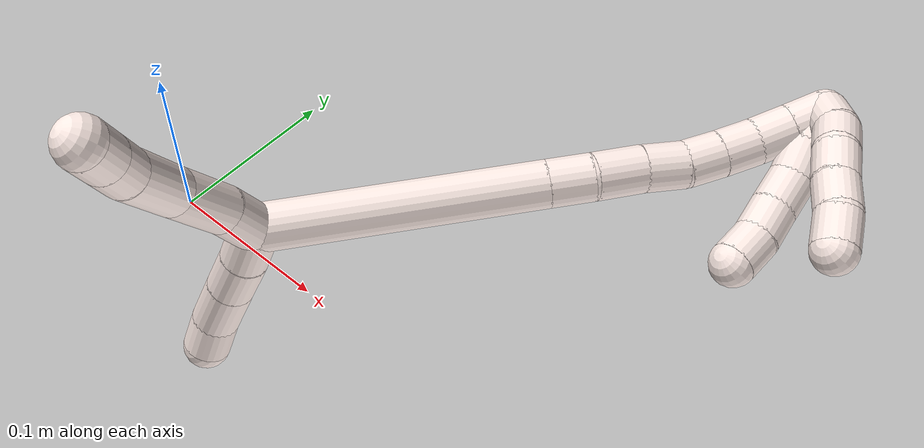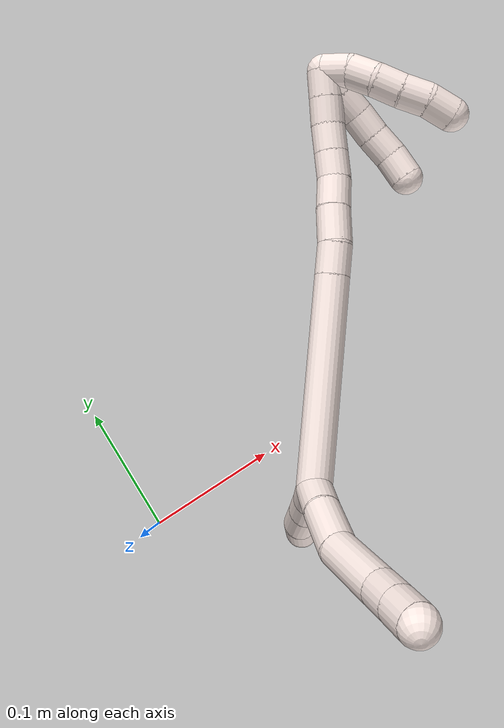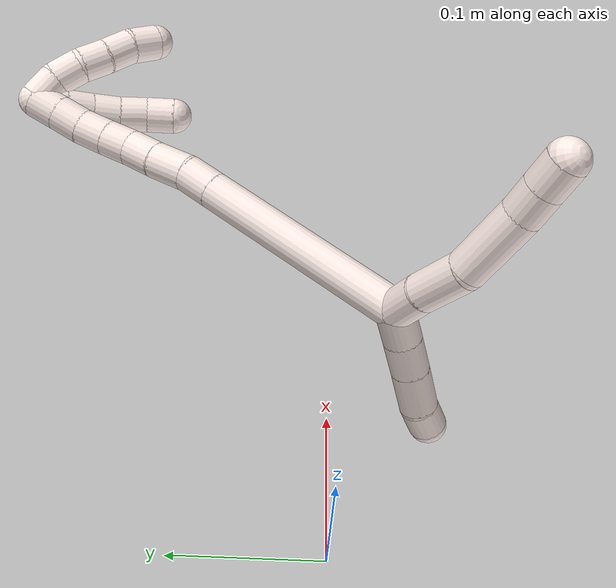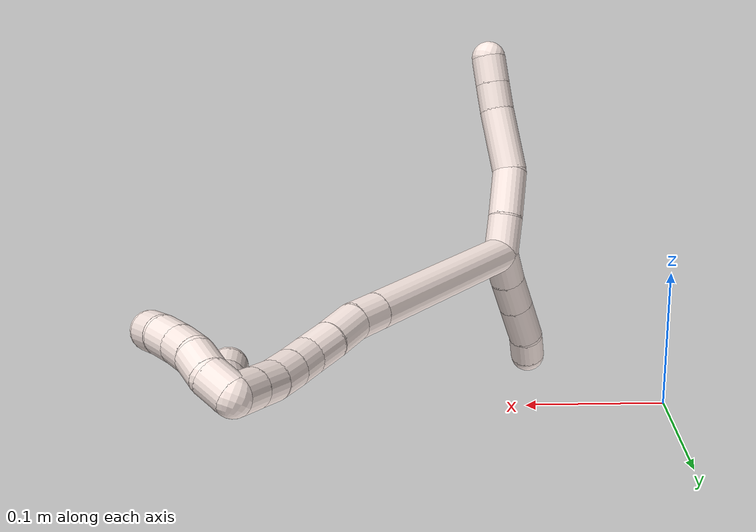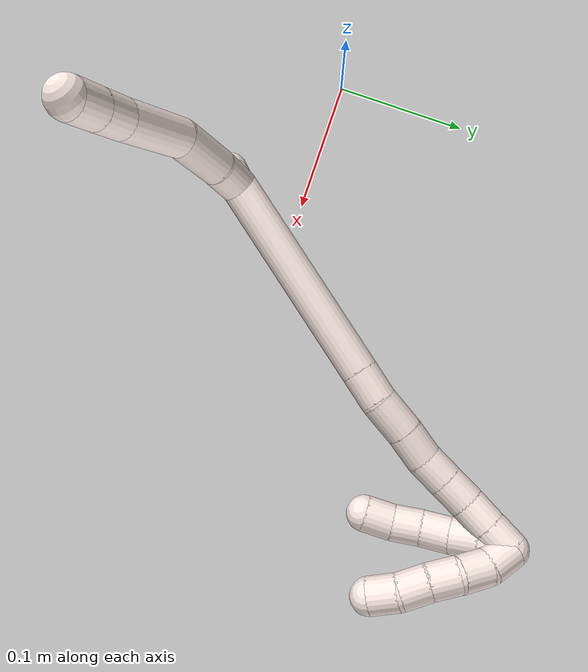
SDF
<sdf version="1.7">
 <world name="default">
  <model name="11">
   <static>0</static>
   <link name="11">
    <collision name="collision-cylinder-e_1_2_8">
     <pose>0.000378 0.002882 0.013105 -0.216454 0.028144 -0.003058</pose>
     <geometry><cylinder><radius>0.0125</radius><length>0.026846</length></cylinder></geometry>
     <surface>
      <friction><ode><mu>1.16</mu><mu2>1.16</mu2><slip1>0</slip1><slip2>0</slip2></ode></friction>
      <contact><ode><kp>1e+06</kp><kd>1</kd><max_vel>0</max_vel><min_depth>0.001</min_depth></ode></contact>
     </surface>
    </collision>
    <visual name="visual-cylinder-e_1_2_8">
     <pose>0.000378 0.002882 0.013105 -0.216454 0.028144 -0.003058</pose>
     <geometry><cylinder><radius>0.0125</radius><length>0.026846</length></cylinder></geometry>
     <material><ambient>1 0.933333 0.909804 1</ambient></material>
    </visual>
    <collision name="collision-cylinder-e_2_8_9">
     <pose>0.003292 0.009186 0.043457 -0.195879 0.143238 -0.014098</pose>
     <geometry><cylinder><radius>0.0125</radius><length>0.035533</length></cylinder></geometry>
     <surface>
      <friction><ode><mu>1.16</mu><mu2>1.16</mu2><slip1>0</slip1><slip2>0</slip2></ode></friction>
      <contact><ode><kp>1e+06</kp><kd>1</kd><max_vel>0</max_vel><min_depth>0.001</min_depth></ode></contact>
     </surface>
    </collision>
    <visual name="visual-cylinder-e_2_8_9">
     <pose>0.003292 0.009186 0.043457 -0.195879 0.143238 -0.014098</pose>
     <geometry><cylinder><radius>0.0125</radius><length>0.035533</length></cylinder></geometry>
     <material><ambient>1 0.933333 0.909804 1</ambient></material>
    </visual>
    <collision name="collision-cylinder-e_3_9_10">
     <pose>0.009443 0.023911 0.081089 -0.506298 0.153869 -0.039879</pose>
     <geometry><cylinder><radius>0.0125</radius><length>0.047173</length></cylinder></geometry>
     <surface>
      <friction><ode><mu>1.16</mu><mu2>1.16</mu2><slip1>0</slip1><slip2>0</slip2></ode></friction>
      <contact><ode><kp>1e+06</kp><kd>1</kd><max_vel>0</max_vel><min_depth>0.001</min_depth></ode></contact>
     </surface>
    </collision>
    <visual name="visual-cylinder-e_3_9_10">
     <pose>0.009443 0.023911 0.081089 -0.506298 0.153869 -0.039879</pose>
     <geometry><cylinder><radius>0.0125</radius><length>0.047173</length></cylinder></geometry>
     <material><ambient>1 0.933333 0.909804 1</ambient></material>
    </visual>
    <collision name="collision-cylinder-e_4_10_11">
     <pose>0.013455 0.040202 0.110277 -0.515454 0.03927 -0.010352</pose>
     <geometry><cylinder><radius>0.0125</radius><length>0.020252</length></cylinder></geometry>
     <surface>
      <friction><ode><mu>1.16</mu><mu2>1.16</mu2><slip1>0</slip1><slip2>0</slip2></ode></friction>
      <contact><ode><kp>1e+06</kp><kd>1</kd><max_vel>0</max_vel><min_depth>0.001</min_depth></ode></contact>
     </surface>
    </collision>
    <visual name="visual-cylinder-e_4_10_11">
     <pose>0.013455 0.040202 0.110277 -0.515454 0.03927 -0.010352</pose>
     <geometry><cylinder><radius>0.0125</radius><length>0.020252</length></cylinder></geometry>
     <material><ambient>1 0.933333 0.909804 1</ambient></material>
    </visual>
    <collision name="collision-cylinder-e_5_11_6">
     <pose>0.01425 0.050097 0.127897 -0.507908 0.039333 -0.01021</pose>
     <geometry><cylinder><radius>0.0125</radius><length>0.020196</length></cylinder></geometry>
     <surface>
      <friction><ode><mu>1.16</mu><mu2>1.16</mu2><slip1>0</slip1><slip2>0</slip2></ode></friction>
      <contact><ode><kp>1e+06</kp><kd>1</kd><max_vel>0</max_vel><min_depth>0.001</min_depth></ode></contact>
     </surface>
    </collision>
    <visual name="visual-cylinder-e_5_11_6">
     <pose>0.01425 0.050097 0.127897 -0.507908 0.039333 -0.01021</pose>
     <geometry><cylinder><radius>0.0125</radius><length>0.020196</length></cylinder></geometry>
     <material><ambient>1 0.933333 0.909804 1</ambient></material>
    </visual>
    <collision name="collision-cylinder-e_1_2_12">
     <pose>0.00649 -0.007965 -0.006062 2.22135 0.575291 1.07636</pose>
     <geometry><cylinder><radius>0.0125</radius><length>0.023858</length></cylinder></geometry>
     <surface>
      <friction><ode><mu>1.16</mu><mu2>1.16</mu2><slip1>0</slip1><slip2>0</slip2></ode></friction>
      <contact><ode><kp>1e+06</kp><kd>1</kd><max_vel>0</max_vel><min_depth>0.001</min_depth></ode></contact>
     </surface>
    </collision>
    <visual name="visual-cylinder-e_1_2_12">
     <pose>0.00649 -0.007965 -0.006062 2.22135 0.575291 1.07636</pose>
     <geometry><cylinder><radius>0.0125</radius><length>0.023858</length></cylinder></geometry>
     <material><ambient>1 0.933333 0.909804 1</ambient></material>
    </visual>
    <collision name="collision-cylinder-e_2_12_13">
     <pose>0.019436 -0.024817 -0.018104 2.16312 0.542338 0.962484</pose>
     <geometry><cylinder><radius>0.0125</radius><length>0.025015</length></cylinder></geometry>
     <surface>
      <friction><ode><mu>1.16</mu><mu2>1.16</mu2><slip1>0</slip1><slip2>0</slip2></ode></friction>
      <contact><ode><kp>1e+06</kp><kd>1</kd><max_vel>0</max_vel><min_depth>0.001</min_depth></ode></contact>
     </surface>
    </collision>
    <visual name="visual-cylinder-e_2_12_13">
     <pose>0.019436 -0.024817 -0.018104 2.16312 0.542338 0.962484</pose>
     <geometry><cylinder><radius>0.0125</radius><length>0.025015</length></cylinder></geometry>
     <material><ambient>1 0.933333 0.909804 1</ambient></material>
    </visual>
    <collision name="collision-cylinder-e_3_13_14">
     <pose>0.03365 -0.044635 -0.031607 2.17356 0.529103 0.951605</pose>
     <geometry><cylinder><radius>0.0125</radius><length>0.03074</length></cylinder></geometry>
     <surface>
      <friction><ode><mu>1.16</mu><mu2>1.16</mu2><slip1>0</slip1><slip2>0</slip2></ode></friction>
      <contact><ode><kp>1e+06</kp><kd>1</kd><max_vel>0</max_vel><min_depth>0.001</min_depth></ode></contact>
     </surface>
    </collision>
    <visual name="visual-cylinder-e_3_13_14">
     <pose>0.03365 -0.044635 -0.031607 2.17356 0.529103 0.951605</pose>
     <geometry><cylinder><radius>0.0125</radius><length>0.03074</length></cylinder></geometry>
     <material><ambient>1 0.933333 0.909804 1</ambient></material>
    </visual>
    <collision name="collision-cylinder-e_4_14_5">
     <pose>0.048095 -0.061467 -0.044063 2.26705 0.715529 1.3492</pose>
     <geometry><cylinder><radius>0.0125</radius><length>0.020387</length></cylinder></geometry>
     <surface>
      <friction><ode><mu>1.16</mu><mu2>1.16</mu2><slip1>0</slip1><slip2>0</slip2></ode></friction>
      <contact><ode><kp>1e+06</kp><kd>1</kd><max_vel>0</max_vel><min_depth>0.001</min_depth></ode></contact>
     </surface>
    </collision>
    <visual name="visual-cylinder-e_4_14_5">
     <pose>0.048095 -0.061467 -0.044063 2.26705 0.715529 1.3492</pose>
     <geometry><cylinder><radius>0.0125</radius><length>0.020387</length></cylinder></geometry>
     <material><ambient>1 0.933333 0.909804 1</ambient></material>
    </visual>
    <collision name="collision-cylinder-e_1_2_15">
     <pose>-0.035361 0.046714 -0.043939 -2.32559 -0.5039 1.07425</pose>
     <geometry><cylinder><radius>0.0125</radius><length>0.146469</length></cylinder></geometry>
     <surface>
      <friction><ode><mu>1.16</mu><mu2>1.16</mu2><slip1>0</slip1><slip2>0</slip2></ode></friction>
      <contact><ode><kp>1e+06</kp><kd>1</kd><max_vel>0</max_vel><min_depth>0.001</min_depth></ode></contact>
     </surface>
    </collision>
    <visual name="visual-cylinder-e_1_2_15">
     <pose>-0.035361 0.046714 -0.043939 -2.32559 -0.5039 1.07425</pose>
     <geometry><cylinder><radius>0.0125</radius><length>0.146469</length></cylinder></geometry>
     <material><ambient>1 0.933333 0.909804 1</ambient></material>
    </visual>
    <collision name="collision-cylinder-e_2_15_16">
     <pose>-0.076315 0.100864 -0.09483 -2.32258 -0.502468 1.06802</pose>
     <geometry><cylinder><radius>0.0125</radius><length>0.023228</length></cylinder></geometry>
     <surface>
      <friction><ode><mu>1.16</mu><mu2>1.16</mu2><slip1>0</slip1><slip2>0</slip2></ode></friction>
      <contact><ode><kp>1e+06</kp><kd>1</kd><max_vel>0</max_vel><min_depth>0.001</min_depth></ode></contact>
     </surface>
    </collision>
    <visual name="visual-cylinder-e_2_15_16">
     <pose>-0.076315 0.100864 -0.09483 -2.32258 -0.502468 1.06802</pose>
     <geometry><cylinder><radius>0.0125</radius><length>0.023228</length></cylinder></geometry>
     <material><ambient>1 0.933333 0.909804 1</ambient></material>
    </visual>
    <collision name="collision-cylinder-e_3_16_17">
     <pose>-0.088869 0.115032 -0.111014 -2.5115 -0.547165 1.42175</pose>
     <geometry><cylinder><radius>0.0125</radius><length>0.026759</length></cylinder></geometry>
     <surface>
      <friction><ode><mu>1.16</mu><mu2>1.16</mu2><slip1>0</slip1><slip2>0</slip2></ode></friction>
      <contact><ode><kp>1e+06</kp><kd>1</kd><max_vel>0</max_vel><min_depth>0.001</min_depth></ode></contact>
     </surface>
    </collision>
    <visual name="visual-cylinder-e_3_16_17">
     <pose>-0.088869 0.115032 -0.111014 -2.5115 -0.547165 1.42175</pose>
     <geometry><cylinder><radius>0.0125</radius><length>0.026759</length></cylinder></geometry>
     <material><ambient>1 0.933333 0.909804 1</ambient></material>
    </visual>
    <collision name="collision-cylinder-e_4_17_18">
     <pose>-0.101052 0.127949 -0.128179 -2.4794 -0.47878 1.23485</pose>
     <geometry><cylinder><radius>0.0125</radius><length>0.022667</length></cylinder></geometry>
     <surface>
      <friction><ode><mu>1.16</mu><mu2>1.16</mu2><slip1>0</slip1><slip2>0</slip2></ode></friction>
      <contact><ode><kp>1e+06</kp><kd>1</kd><max_vel>0</max_vel><min_depth>0.001</min_depth></ode></contact>
     </surface>
    </collision>
    <visual name="visual-cylinder-e_4_17_18">
     <pose>-0.101052 0.127949 -0.128179 -2.4794 -0.47878 1.23485</pose>
     <geometry><cylinder><radius>0.0125</radius><length>0.022667</length></cylinder></geometry>
     <material><ambient>1 0.933333 0.909804 1</ambient></material>
    </visual>
    <collision name="collision-cylinder-e_5_18_19">
     <pose>-0.112465 0.139151 -0.142235 -2.45511 -0.663829 1.53456</pose>
     <geometry><cylinder><radius>0.0125</radius><length>0.0201</length></cylinder></geometry>
     <surface>
      <friction><ode><mu>1.16</mu><mu2>1.16</mu2><slip1>0</slip1><slip2>0</slip2></ode></friction>
      <contact><ode><kp>1e+06</kp><kd>1</kd><max_vel>0</max_vel><min_depth>0.001</min_depth></ode></contact>
     </surface>
    </collision>
    <visual name="visual-cylinder-e_5_18_19">
     <pose>-0.112465 0.139151 -0.142235 -2.45511 -0.663829 1.53456</pose>
     <geometry><cylinder><radius>0.0125</radius><length>0.0201</length></cylinder></geometry>
     <material><ambient>1 0.933333 0.909804 1</ambient></material>
    </visual>
    <collision name="collision-cylinder-e_6_19_20">
     <pose>-0.125252 0.149474 -0.15423 -2.40685 -0.694771 1.50983</pose>
     <geometry><cylinder><radius>0.0125</radius><length>0.020604</length></cylinder></geometry>
     <surface>
      <friction><ode><mu>1.16</mu><mu2>1.16</mu2><slip1>0</slip1><slip2>0</slip2></ode></friction>
      <contact><ode><kp>1e+06</kp><kd>1</kd><max_vel>0</max_vel><min_depth>0.001</min_depth></ode></contact>
     </surface>
    </collision>
    <visual name="visual-cylinder-e_6_19_20">
     <pose>-0.125252 0.149474 -0.15423 -2.40685 -0.694771 1.50983</pose>
     <geometry><cylinder><radius>0.0125</radius><length>0.020604</length></cylinder></geometry>
     <material><ambient>1 0.933333 0.909804 1</ambient></material>
    </visual>
    <collision name="collision-cylinder-e_7_20_21">
     <pose>-0.138474 0.160727 -0.164801 -2.23944 -0.718349 1.31879</pose>
     <geometry><cylinder><radius>0.0125</radius><length>0.020135</length></cylinder></geometry>
     <surface>
      <friction><ode><mu>1.16</mu><mu2>1.16</mu2><slip1>0</slip1><slip2>0</slip2></ode></friction>
      <contact><ode><kp>1e+06</kp><kd>1</kd><max_vel>0</max_vel><min_depth>0.001</min_depth></ode></contact>
     </surface>
    </collision>
    <visual name="visual-cylinder-e_7_20_21">
     <pose>-0.138474 0.160727 -0.164801 -2.23944 -0.718349 1.31879</pose>
     <geometry><cylinder><radius>0.0125</radius><length>0.020135</length></cylinder></geometry>
     <material><ambient>1 0.933333 0.909804 1</ambient></material>
    </visual>
    <collision name="collision-cylinder-e_8_21_1">
     <pose>-0.151785 0.172511 -0.174149 -2.24345 -0.730562 1.34165</pose>
     <geometry><cylinder><radius>0.0125</radius><length>0.020038</length></cylinder></geometry>
     <surface>
      <friction><ode><mu>1.16</mu><mu2>1.16</mu2><slip1>0</slip1><slip2>0</slip2></ode></friction>
      <contact><ode><kp>1e+06</kp><kd>1</kd><max_vel>0</max_vel><min_depth>0.001</min_depth></ode></contact>
     </surface>
    </collision>
    <visual name="visual-cylinder-e_8_21_1">
     <pose>-0.151785 0.172511 -0.174149 -2.24345 -0.730562 1.34165</pose>
     <geometry><cylinder><radius>0.0125</radius><length>0.020038</length></cylinder></geometry>
     <material><ambient>1 0.933333 0.909804 1</ambient></material>
    </visual>
    <collision name="collision-cylinder-e_1_1_22">
     <pose>-0.148709 0.176396 -0.17785 1.11856 1.35212 0.930679</pose>
     <geometry><cylinder><radius>0.0125</radius><length>0.02</length></cylinder></geometry>
     <surface>
      <friction><ode><mu>1.16</mu><mu2>1.16</mu2><slip1>0</slip1><slip2>0</slip2></ode></friction>
      <contact><ode><kp>1e+06</kp><kd>1</kd><max_vel>0</max_vel><min_depth>0.001</min_depth></ode></contact>
     </surface>
    </collision>
    <visual name="visual-cylinder-e_1_1_22">
     <pose>-0.148709 0.176396 -0.17785 1.11856 1.35212 0.930679</pose>
     <geometry><cylinder><radius>0.0125</radius><length>0.02</length></cylinder></geometry>
     <material><ambient>1 0.933333 0.909804 1</ambient></material>
    </visual>
    <collision name="collision-cylinder-e_2_22_23">
     <pose>-0.129002 0.173778 -0.176095 0.690976 1.46589 0.626684</pose>
     <geometry><cylinder><radius>0.0125</radius><length>0.02</length></cylinder></geometry>
     <surface>
      <friction><ode><mu>1.16</mu><mu2>1.16</mu2><slip1>0</slip1><slip2>0</slip2></ode></friction>
      <contact><ode><kp>1e+06</kp><kd>1</kd><max_vel>0</max_vel><min_depth>0.001</min_depth></ode></contact>
     </surface>
    </collision>
    <visual name="visual-cylinder-e_2_22_23">
     <pose>-0.129002 0.173778 -0.176095 0.690976 1.46589 0.626684</pose>
     <geometry><cylinder><radius>0.0125</radius><length>0.02</length></cylinder></geometry>
     <material><ambient>1 0.933333 0.909804 1</ambient></material>
    </visual>
    <collision name="collision-cylinder-e_3_23_24">
     <pose>-0.109414 0.171987 -0.172888 0.437789 1.30262 0.335953</pose>
     <geometry><cylinder><radius>0.0125</radius><length>0.02</length></cylinder></geometry>
     <surface>
      <friction><ode><mu>1.16</mu><mu2>1.16</mu2><slip1>0</slip1><slip2>0</slip2></ode></friction>
      <contact><ode><kp>1e+06</kp><kd>1</kd><max_vel>0</max_vel><min_depth>0.001</min_depth></ode></contact>
     </surface>
    </collision>
    <visual name="visual-cylinder-e_3_23_24">
     <pose>-0.109414 0.171987 -0.172888 0.437789 1.30262 0.335953</pose>
     <geometry><cylinder><radius>0.0125</radius><length>0.02</length></cylinder></geometry>
     <material><ambient>1 0.933333 0.909804 1</ambient></material>
    </visual>
    <collision name="collision-cylinder-e_4_24_25">
     <pose>-0.090275 0.170578 -0.167368 0.091136 1.25212 0.065922</pose>
     <geometry><cylinder><radius>0.0125</radius><length>0.02</length></cylinder></geometry>
     <surface>
      <friction><ode><mu>1.16</mu><mu2>1.16</mu2><slip1>0</slip1><slip2>0</slip2></ode></friction>
      <contact><ode><kp>1e+06</kp><kd>1</kd><max_vel>0</max_vel><min_depth>0.001</min_depth></ode></contact>
     </surface>
    </collision>
    <visual name="visual-cylinder-e_4_24_25">
     <pose>-0.090275 0.170578 -0.167368 0.091136 1.25212 0.065922</pose>
     <geometry><cylinder><radius>0.0125</radius><length>0.02</length></cylinder></geometry>
     <material><ambient>1 0.933333 0.909804 1</ambient></material>
    </visual>
    <collision name="collision-cylinder-e_5_25_4">
     <pose>-0.072003 0.169125 -0.159599 0.246153 1.07081 0.146497</pose>
     <geometry><cylinder><radius>0.0125</radius><length>0.02</length></cylinder></geometry>
     <surface>
      <friction><ode><mu>1.16</mu><mu2>1.16</mu2><slip1>0</slip1><slip2>0</slip2></ode></friction>
      <contact><ode><kp>1e+06</kp><kd>1</kd><max_vel>0</max_vel><min_depth>0.001</min_depth></ode></contact>
     </surface>
    </collision>
    <visual name="visual-cylinder-e_5_25_4">
     <pose>-0.072003 0.169125 -0.159599 0.246153 1.07081 0.146497</pose>
     <geometry><cylinder><radius>0.0125</radius><length>0.02</length></cylinder></geometry>
     <material><ambient>1 0.933333 0.909804 1</ambient></material>
    </visual>
    <collision name="collision-cylinder-e_1_1_26">
     <pose>-0.152215 0.185427 -0.175519 -1.1371 0.675775 -0.441663</pose>
     <geometry><cylinder><radius>0.0125</radius><length>0.02</length></cylinder></geometry>
     <surface>
      <friction><ode><mu>1.16</mu><mu2>1.16</mu2><slip1>0</slip1><slip2>0</slip2></ode></friction>
      <contact><ode><kp>1e+06</kp><kd>1</kd><max_vel>0</max_vel><min_depth>0.001</min_depth></ode></contact>
     </surface>
    </collision>
    <visual name="visual-cylinder-e_1_1_26">
     <pose>-0.152215 0.185427 -0.175519 -1.1371 0.675775 -0.441663</pose>
     <geometry><cylinder><radius>0.0125</radius><length>0.02</length></cylinder></geometry>
     <material><ambient>1 0.933333 0.909804 1</ambient></material>
    </visual>
    <collision name="collision-cylinder-e_2_26_27">
     <pose>-0.138206 0.196971 -0.167776 -0.785317 0.887489 -0.388786</pose>
     <geometry><cylinder><radius>0.0125</radius><length>0.02</length></cylinder></geometry>
     <surface>
      <friction><ode><mu>1.16</mu><mu2>1.16</mu2><slip1>0</slip1><slip2>0</slip2></ode></friction>
      <contact><ode><kp>1e+06</kp><kd>1</kd><max_vel>0</max_vel><min_depth>0.001</min_depth></ode></contact>
     </surface>
    </collision>
    <visual name="visual-cylinder-e_2_26_27">
     <pose>-0.138206 0.196971 -0.167776 -0.785317 0.887489 -0.388786</pose>
     <geometry><cylinder><radius>0.0125</radius><length>0.02</length></cylinder></geometry>
     <material><ambient>1 0.933333 0.909804 1</ambient></material>
    </visual>
    <collision name="collision-cylinder-e_3_27_28">
     <pose>-0.121478 0.205202 -0.161008 -1.02195 1.11352 -0.671513</pose>
     <geometry><cylinder><radius>0.0125</radius><length>0.02</length></cylinder></geometry>
     <surface>
      <friction><ode><mu>1.16</mu><mu2>1.16</mu2><slip1>0</slip1><slip2>0</slip2></ode></friction>
      <contact><ode><kp>1e+06</kp><kd>1</kd><max_vel>0</max_vel><min_depth>0.001</min_depth></ode></contact>
     </surface>
    </collision>
    <visual name="visual-cylinder-e_3_27_28">
     <pose>-0.121478 0.205202 -0.161008 -1.02195 1.11352 -0.671513</pose>
     <geometry><cylinder><radius>0.0125</radius><length>0.02</length></cylinder></geometry>
     <material><ambient>1 0.933333 0.909804 1</ambient></material>
    </visual>
    <collision name="collision-cylinder-e_4_28_29">
     <pose>-0.103687 0.213364 -0.156999 -1.20062 1.07983 -0.778683</pose>
     <geometry><cylinder><radius>0.0125</radius><length>0.02</length></cylinder></geometry>
     <surface>
      <friction><ode><mu>1.16</mu><mu2>1.16</mu2><slip1>0</slip1><slip2>0</slip2></ode></friction>
      <contact><ode><kp>1e+06</kp><kd>1</kd><max_vel>0</max_vel><min_depth>0.001</min_depth></ode></contact>
     </surface>
    </collision>
    <visual name="visual-cylinder-e_4_28_29">
     <pose>-0.103687 0.213364 -0.156999 -1.20062 1.07983 -0.778683</pose>
     <geometry><cylinder><radius>0.0125</radius><length>0.02</length></cylinder></geometry>
     <material><ambient>1 0.933333 0.909804 1</ambient></material>
    </visual>
    <collision name="collision-cylinder-e_5_29_3">
     <pose>-0.085209 0.22015 -0.154299 -1.17687 1.30895 -0.946414</pose>
     <geometry><cylinder><radius>0.0125</radius><length>0.02</length></cylinder></geometry>
     <surface>
      <friction><ode><mu>1.16</mu><mu2>1.16</mu2><slip1>0</slip1><slip2>0</slip2></ode></friction>
      <contact><ode><kp>1e+06</kp><kd>1</kd><max_vel>0</max_vel><min_depth>0.001</min_depth></ode></contact>
     </surface>
    </collision>
    <visual name="visual-cylinder-e_5_29_3">
     <pose>-0.085209 0.22015 -0.154299 -1.17687 1.30895 -0.946414</pose>
     <geometry><cylinder><radius>0.0125</radius><length>0.02</length></cylinder></geometry>
     <material><ambient>1 0.933333 0.909804 1</ambient></material>
    </visual>
    <collision name="collision-sphere-3">
     <pose>-0.07555 0.22254 -0.153306 0 -0 0</pose>
     <geometry><sphere><radius>0.0125</radius></sphere></geometry>
     <surface>
      <friction><ode><mu>1.16</mu><mu2>1.16</mu2><slip1>0</slip1><slip2>0</slip2></ode></friction>
      <contact><ode><kp>1e+06</kp><kd>1</kd><max_vel>0</max_vel><min_depth>0.001</min_depth></ode></contact>
     </surface>
    </collision>
    <visual name="visual-sphere-3">
     <pose>-0.07555 0.22254 -0.153306 0 -0 0</pose>
     <geometry><sphere><radius>0.0125</radius></sphere></geometry>
     <material><ambient>1 0.933333 0.909804 1</ambient></material>
    </visual>
    <collision name="collision-sphere-29">
     <pose>-0.094868 0.217759 -0.155293 0 -0 0</pose>
     <geometry><sphere><radius>0.0125</radius></sphere></geometry>
     <surface>
      <friction><ode><mu>1.16</mu><mu2>1.16</mu2><slip1>0</slip1><slip2>0</slip2></ode></friction>
      <contact><ode><kp>1e+06</kp><kd>1</kd><max_vel>0</max_vel><min_depth>0.001</min_depth></ode></contact>
     </surface>
    </collision>
    <visual name="visual-sphere-29">
     <pose>-0.094868 0.217759 -0.155293 0 -0 0</pose>
     <geometry><sphere><radius>0.0125</radius></sphere></geometry>
     <material><ambient>1 0.933333 0.909804 1</ambient></material>
    </visual>
    <collision name="collision-sphere-28">
     <pose>-0.112505 0.208968 -0.158704 0 -0 0</pose>
     <geometry><sphere><radius>0.0125</radius></sphere></geometry>
     <surface>
      <friction><ode><mu>1.16</mu><mu2>1.16</mu2><slip1>0</slip1><slip2>0</slip2></ode></friction>
      <contact><ode><kp>1e+06</kp><kd>1</kd><max_vel>0</max_vel><min_depth>0.001</min_depth></ode></contact>
     </surface>
    </collision>
    <visual name="visual-sphere-28">
     <pose>-0.112505 0.208968 -0.158704 0 -0 0</pose>
     <geometry><sphere><radius>0.0125</radius></sphere></geometry>
     <material><ambient>1 0.933333 0.909804 1</ambient></material>
    </visual>
    <collision name="collision-sphere-27">
     <pose>-0.130451 0.201435 -0.163311 0 -0 0</pose>
     <geometry><sphere><radius>0.0125</radius></sphere></geometry>
     <surface>
      <friction><ode><mu>1.16</mu><mu2>1.16</mu2><slip1>0</slip1><slip2>0</slip2></ode></friction>
      <contact><ode><kp>1e+06</kp><kd>1</kd><max_vel>0</max_vel><min_depth>0.001</min_depth></ode></contact>
     </surface>
    </collision>
    <visual name="visual-sphere-27">
     <pose>-0.130451 0.201435 -0.163311 0 -0 0</pose>
     <geometry><sphere><radius>0.0125</radius></sphere></geometry>
     <material><ambient>1 0.933333 0.909804 1</ambient></material>
    </visual>
    <collision name="collision-sphere-26">
     <pose>-0.14596 0.192507 -0.172241 0 -0 0</pose>
     <geometry><sphere><radius>0.0125</radius></sphere></geometry>
     <surface>
      <friction><ode><mu>1.16</mu><mu2>1.16</mu2><slip1>0</slip1><slip2>0</slip2></ode></friction>
      <contact><ode><kp>1e+06</kp><kd>1</kd><max_vel>0</max_vel><min_depth>0.001</min_depth></ode></contact>
     </surface>
    </collision>
    <visual name="visual-sphere-26">
     <pose>-0.14596 0.192507 -0.172241 0 -0 0</pose>
     <geometry><sphere><radius>0.0125</radius></sphere></geometry>
     <material><ambient>1 0.933333 0.909804 1</ambient></material>
    </visual>
    <collision name="collision-sphere-4">
     <pose>-0.063227 0.167957 -0.154949 0 -0 0</pose>
     <geometry><sphere><radius>0.0125</radius></sphere></geometry>
     <surface>
      <friction><ode><mu>1.16</mu><mu2>1.16</mu2><slip1>0</slip1><slip2>0</slip2></ode></friction>
      <contact><ode><kp>1e+06</kp><kd>1</kd><max_vel>0</max_vel><min_depth>0.001</min_depth></ode></contact>
     </surface>
    </collision>
    <visual name="visual-sphere-4">
     <pose>-0.063227 0.167957 -0.154949 0 -0 0</pose>
     <geometry><sphere><radius>0.0125</radius></sphere></geometry>
     <material><ambient>1 0.933333 0.909804 1</ambient></material>
    </visual>
    <collision name="collision-sphere-25">
     <pose>-0.080779 0.170293 -0.164248 0 -0 0</pose>
     <geometry><sphere><radius>0.0125</radius></sphere></geometry>
     <surface>
      <friction><ode><mu>1.16</mu><mu2>1.16</mu2><slip1>0</slip1><slip2>0</slip2></ode></friction>
      <contact><ode><kp>1e+06</kp><kd>1</kd><max_vel>0</max_vel><min_depth>0.001</min_depth></ode></contact>
     </surface>
    </collision>
    <visual name="visual-sphere-25">
     <pose>-0.080779 0.170293 -0.164248 0 -0 0</pose>
     <geometry><sphere><radius>0.0125</radius></sphere></geometry>
     <material><ambient>1 0.933333 0.909804 1</ambient></material>
    </visual>
    <collision name="collision-sphere-24">
     <pose>-0.099772 0.170864 -0.170489 0 -0 0</pose>
     <geometry><sphere><radius>0.0125</radius></sphere></geometry>
     <surface>
      <friction><ode><mu>1.16</mu><mu2>1.16</mu2><slip1>0</slip1><slip2>0</slip2></ode></friction>
      <contact><ode><kp>1e+06</kp><kd>1</kd><max_vel>0</max_vel><min_depth>0.001</min_depth></ode></contact>
     </surface>
    </collision>
    <visual name="visual-sphere-24">
     <pose>-0.099772 0.170864 -0.170489 0 -0 0</pose>
     <geometry><sphere><radius>0.0125</radius></sphere></geometry>
     <material><ambient>1 0.933333 0.909804 1</ambient></material>
    </visual>
    <collision name="collision-sphere-23">
     <pose>-0.119057 0.17311 -0.175288 0 -0 0</pose>
     <geometry><sphere><radius>0.0125</radius></sphere></geometry>
     <surface>
      <friction><ode><mu>1.16</mu><mu2>1.16</mu2><slip1>0</slip1><slip2>0</slip2></ode></friction>
      <contact><ode><kp>1e+06</kp><kd>1</kd><max_vel>0</max_vel><min_depth>0.001</min_depth></ode></contact>
     </surface>
    </collision>
    <visual name="visual-sphere-23">
     <pose>-0.119057 0.17311 -0.175288 0 -0 0</pose>
     <geometry><sphere><radius>0.0125</radius></sphere></geometry>
     <material><ambient>1 0.933333 0.909804 1</ambient></material>
    </visual>
    <collision name="collision-sphere-22">
     <pose>-0.138947 0.174445 -0.176902 0 -0 0</pose>
     <geometry><sphere><radius>0.0125</radius></sphere></geometry>
     <surface>
      <friction><ode><mu>1.16</mu><mu2>1.16</mu2><slip1>0</slip1><slip2>0</slip2></ode></friction>
      <contact><ode><kp>1e+06</kp><kd>1</kd><max_vel>0</max_vel><min_depth>0.001</min_depth></ode></contact>
     </surface>
    </collision>
    <visual name="visual-sphere-22">
     <pose>-0.138947 0.174445 -0.176902 0 -0 0</pose>
     <geometry><sphere><radius>0.0125</radius></sphere></geometry>
     <material><ambient>1 0.933333 0.909804 1</ambient></material>
    </visual>
    <collision name="collision-sphere-1">
     <pose>-0.15847 0.178347 -0.178798 0 -0 0</pose>
     <geometry><sphere><radius>0.0125</radius></sphere></geometry>
     <surface>
      <friction><ode><mu>1.16</mu><mu2>1.16</mu2><slip1>0</slip1><slip2>0</slip2></ode></friction>
      <contact><ode><kp>1e+06</kp><kd>1</kd><max_vel>0</max_vel><min_depth>0.001</min_depth></ode></contact>
     </surface>
    </collision>
    <visual name="visual-sphere-1">
     <pose>-0.15847 0.178347 -0.178798 0 -0 0</pose>
     <geometry><sphere><radius>0.0125</radius></sphere></geometry>
     <material><ambient>1 0.933333 0.909804 1</ambient></material>
    </visual>
    <collision name="collision-sphere-21">
     <pose>-0.1451 0.166674 -0.169499 0 -0 0</pose>
     <geometry><sphere><radius>0.0125</radius></sphere></geometry>
     <surface>
      <friction><ode><mu>1.16</mu><mu2>1.16</mu2><slip1>0</slip1><slip2>0</slip2></ode></friction>
      <contact><ode><kp>1e+06</kp><kd>1</kd><max_vel>0</max_vel><min_depth>0.001</min_depth></ode></contact>
     </surface>
    </collision>
    <visual name="visual-sphere-21">
     <pose>-0.1451 0.166674 -0.169499 0 -0 0</pose>
     <geometry><sphere><radius>0.0125</radius></sphere></geometry>
     <material><ambient>1 0.933333 0.909804 1</ambient></material>
    </visual>
    <collision name="collision-sphere-6">
     <pose>0.014647 0.055004 0.136713 0 -0 0</pose>
     <geometry><sphere><radius>0.0125</radius></sphere></geometry>
     <surface>
      <friction><ode><mu>1.16</mu><mu2>1.16</mu2><slip1>0</slip1><slip2>0</slip2></ode></friction>
      <contact><ode><kp>1e+06</kp><kd>1</kd><max_vel>0</max_vel><min_depth>0.001</min_depth></ode></contact>
     </surface>
    </collision>
    <visual name="visual-sphere-6">
     <pose>0.014647 0.055004 0.136713 0 -0 0</pose>
     <geometry><sphere><radius>0.0125</radius></sphere></geometry>
     <material><ambient>1 0.933333 0.909804 1</ambient></material>
    </visual>
    <collision name="collision-sphere-11">
     <pose>0.013853 0.045189 0.11908 0 -0 0</pose>
     <geometry><sphere><radius>0.0125</radius></sphere></geometry>
     <surface>
      <friction><ode><mu>1.16</mu><mu2>1.16</mu2><slip1>0</slip1><slip2>0</slip2></ode></friction>
      <contact><ode><kp>1e+06</kp><kd>1</kd><max_vel>0</max_vel><min_depth>0.001</min_depth></ode></contact>
     </surface>
    </collision>
    <visual name="visual-sphere-11">
     <pose>0.013853 0.045189 0.11908 0 -0 0</pose>
     <geometry><sphere><radius>0.0125</radius></sphere></geometry>
     <material><ambient>1 0.933333 0.909804 1</ambient></material>
    </visual>
    <collision name="collision-sphere-10">
     <pose>0.013058 0.035214 0.101473 0 -0 0</pose>
     <geometry><sphere><radius>0.0125</radius></sphere></geometry>
     <surface>
      <friction><ode><mu>1.16</mu><mu2>1.16</mu2><slip1>0</slip1><slip2>0</slip2></ode></friction>
      <contact><ode><kp>1e+06</kp><kd>1</kd><max_vel>0</max_vel><min_depth>0.001</min_depth></ode></contact>
     </surface>
    </collision>
    <visual name="visual-sphere-10">
     <pose>0.013058 0.035214 0.101473 0 -0 0</pose>
     <geometry><sphere><radius>0.0125</radius></sphere></geometry>
     <material><ambient>1 0.933333 0.909804 1</ambient></material>
    </visual>
    <collision name="collision-sphere-9">
     <pose>0.005828 0.012608 0.060706 0 -0 0</pose>
     <geometry><sphere><radius>0.0125</radius></sphere></geometry>
     <surface>
      <friction><ode><mu>1.16</mu><mu2>1.16</mu2><slip1>0</slip1><slip2>0</slip2></ode></friction>
      <contact><ode><kp>1e+06</kp><kd>1</kd><max_vel>0</max_vel><min_depth>0.001</min_depth></ode></contact>
     </surface>
    </collision>
    <visual name="visual-sphere-9">
     <pose>0.005828 0.012608 0.060706 0 -0 0</pose>
     <geometry><sphere><radius>0.0125</radius></sphere></geometry>
     <material><ambient>1 0.933333 0.909804 1</ambient></material>
    </visual>
    <collision name="collision-sphere-2">
     <geometry><sphere><radius>0.0125</radius></sphere></geometry>
     <surface>
      <friction><ode><mu>1.16</mu><mu2>1.16</mu2><slip1>0</slip1><slip2>0</slip2></ode></friction>
      <contact><ode><kp>1e+06</kp><kd>1</kd><max_vel>0</max_vel><min_depth>0.001</min_depth></ode></contact>
     </surface>
    </collision>
    <visual name="visual-sphere-2">
     <geometry><sphere><radius>0.0125</radius></sphere></geometry>
     <material><ambient>1 0.933333 0.909804 1</ambient></material>
    </visual>
    <collision name="collision-sphere-19">
     <pose>-0.118657 0.144168 -0.148357 0 -0 0</pose>
     <geometry><sphere><radius>0.0125</radius></sphere></geometry>
     <surface>
      <friction><ode><mu>1.16</mu><mu2>1.16</mu2><slip1>0</slip1><slip2>0</slip2></ode></friction>
      <contact><ode><kp>1e+06</kp><kd>1</kd><max_vel>0</max_vel><min_depth>0.001</min_depth></ode></contact>
     </surface>
    </collision>
    <visual name="visual-sphere-19">
     <pose>-0.118657 0.144168 -0.148357 0 -0 0</pose>
     <geometry><sphere><radius>0.0125</radius></sphere></geometry>
     <material><ambient>1 0.933333 0.909804 1</ambient></material>
    </visual>
    <collision name="collision-sphere-8">
     <pose>0.000755 0.005763 0.026209 0 -0 0</pose>
     <geometry><sphere><radius>0.0125</radius></sphere></geometry>
     <surface>
      <friction><ode><mu>1.16</mu><mu2>1.16</mu2><slip1>0</slip1><slip2>0</slip2></ode></friction>
      <contact><ode><kp>1e+06</kp><kd>1</kd><max_vel>0</max_vel><min_depth>0.001</min_depth></ode></contact>
     </surface>
    </collision>
    <visual name="visual-sphere-8">
     <pose>0.000755 0.005763 0.026209 0 -0 0</pose>
     <geometry><sphere><radius>0.0125</radius></sphere></geometry>
     <material><ambient>1 0.933333 0.909804 1</ambient></material>
    </visual>
    <collision name="collision-sphere-12">
     <pose>0.012981 -0.015929 -0.012123 0 -0 0</pose>
     <geometry><sphere><radius>0.0125</radius></sphere></geometry>
     <surface>
      <friction><ode><mu>1.16</mu><mu2>1.16</mu2><slip1>0</slip1><slip2>0</slip2></ode></friction>
      <contact><ode><kp>1e+06</kp><kd>1</kd><max_vel>0</max_vel><min_depth>0.001</min_depth></ode></contact>
     </surface>
    </collision>
    <visual name="visual-sphere-12">
     <pose>0.012981 -0.015929 -0.012123 0 -0 0</pose>
     <geometry><sphere><radius>0.0125</radius></sphere></geometry>
     <material><ambient>1 0.933333 0.909804 1</ambient></material>
    </visual>
    <collision name="collision-sphere-13">
     <pose>0.025892 -0.033705 -0.024085 0 -0 0</pose>
     <geometry><sphere><radius>0.0125</radius></sphere></geometry>
     <surface>
      <friction><ode><mu>1.16</mu><mu2>1.16</mu2><slip1>0</slip1><slip2>0</slip2></ode></friction>
      <contact><ode><kp>1e+06</kp><kd>1</kd><max_vel>0</max_vel><min_depth>0.001</min_depth></ode></contact>
     </surface>
    </collision>
    <visual name="visual-sphere-13">
     <pose>0.025892 -0.033705 -0.024085 0 -0 0</pose>
     <geometry><sphere><radius>0.0125</radius></sphere></geometry>
     <material><ambient>1 0.933333 0.909804 1</ambient></material>
    </visual>
    <collision name="collision-sphere-14">
     <pose>0.041408 -0.055564 -0.039129 0 -0 0</pose>
     <geometry><sphere><radius>0.0125</radius></sphere></geometry>
     <surface>
      <friction><ode><mu>1.16</mu><mu2>1.16</mu2><slip1>0</slip1><slip2>0</slip2></ode></friction>
      <contact><ode><kp>1e+06</kp><kd>1</kd><max_vel>0</max_vel><min_depth>0.001</min_depth></ode></contact>
     </surface>
    </collision>
    <visual name="visual-sphere-14">
     <pose>0.041408 -0.055564 -0.039129 0 -0 0</pose>
     <geometry><sphere><radius>0.0125</radius></sphere></geometry>
     <material><ambient>1 0.933333 0.909804 1</ambient></material>
    </visual>
    <collision name="collision-sphere-5">
     <pose>0.054782 -0.06737 -0.048998 0 -0 0</pose>
     <geometry><sphere><radius>0.0125</radius></sphere></geometry>
     <surface>
      <friction><ode><mu>1.16</mu><mu2>1.16</mu2><slip1>0</slip1><slip2>0</slip2></ode></friction>
      <contact><ode><kp>1e+06</kp><kd>1</kd><max_vel>0</max_vel><min_depth>0.001</min_depth></ode></contact>
     </surface>
    </collision>
    <visual name="visual-sphere-5">
     <pose>0.054782 -0.06737 -0.048998 0 -0 0</pose>
     <geometry><sphere><radius>0.0125</radius></sphere></geometry>
     <material><ambient>1 0.933333 0.909804 1</ambient></material>
    </visual>
    <collision name="collision-sphere-15">
     <pose>-0.070722 0.093429 -0.087879 0 -0 0</pose>
     <geometry><sphere><radius>0.0125</radius></sphere></geometry>
     <surface>
      <friction><ode><mu>1.16</mu><mu2>1.16</mu2><slip1>0</slip1><slip2>0</slip2></ode></friction>
      <contact><ode><kp>1e+06</kp><kd>1</kd><max_vel>0</max_vel><min_depth>0.001</min_depth></ode></contact>
     </surface>
    </collision>
    <visual name="visual-sphere-15">
     <pose>-0.070722 0.093429 -0.087879 0 -0 0</pose>
     <geometry><sphere><radius>0.0125</radius></sphere></geometry>
     <material><ambient>1 0.933333 0.909804 1</ambient></material>
    </visual>
    <collision name="collision-sphere-16">
     <pose>-0.081908 0.108299 -0.101782 0 -0 0</pose>
     <geometry><sphere><radius>0.0125</radius></sphere></geometry>
     <surface>
      <friction><ode><mu>1.16</mu><mu2>1.16</mu2><slip1>0</slip1><slip2>0</slip2></ode></friction>
      <contact><ode><kp>1e+06</kp><kd>1</kd><max_vel>0</max_vel><min_depth>0.001</min_depth></ode></contact>
     </surface>
    </collision>
    <visual name="visual-sphere-16">
     <pose>-0.081908 0.108299 -0.101782 0 -0 0</pose>
     <geometry><sphere><radius>0.0125</radius></sphere></geometry>
     <material><ambient>1 0.933333 0.909804 1</ambient></material>
    </visual>
    <collision name="collision-sphere-17">
     <pose>-0.09583 0.121764 -0.120246 0 -0 0</pose>
     <geometry><sphere><radius>0.0125</radius></sphere></geometry>
     <surface>
      <friction><ode><mu>1.16</mu><mu2>1.16</mu2><slip1>0</slip1><slip2>0</slip2></ode></friction>
      <contact><ode><kp>1e+06</kp><kd>1</kd><max_vel>0</max_vel><min_depth>0.001</min_depth></ode></contact>
     </surface>
    </collision>
    <visual name="visual-sphere-17">
     <pose>-0.09583 0.121764 -0.120246 0 -0 0</pose>
     <geometry><sphere><radius>0.0125</radius></sphere></geometry>
     <material><ambient>1 0.933333 0.909804 1</ambient></material>
    </visual>
    <collision name="collision-sphere-18">
     <pose>-0.106273 0.134134 -0.136112 0 -0 0</pose>
     <geometry><sphere><radius>0.0125</radius></sphere></geometry>
     <surface>
      <friction><ode><mu>1.16</mu><mu2>1.16</mu2><slip1>0</slip1><slip2>0</slip2></ode></friction>
      <contact><ode><kp>1e+06</kp><kd>1</kd><max_vel>0</max_vel><min_depth>0.001</min_depth></ode></contact>
     </surface>
    </collision>
    <visual name="visual-sphere-18">
     <pose>-0.106273 0.134134 -0.136112 0 -0 0</pose>
     <geometry><sphere><radius>0.0125</radius></sphere></geometry>
     <material><ambient>1 0.933333 0.909804 1</ambient></material>
    </visual>
    <collision name="collision-sphere-20">
     <pose>-0.131848 0.154779 -0.160102 0 -0 0</pose>
     <geometry><sphere><radius>0.0125</radius></sphere></geometry>
     <surface>
      <friction><ode><mu>1.16</mu><mu2>1.16</mu2><slip1>0</slip1><slip2>0</slip2></ode></friction>
      <contact><ode><kp>1e+06</kp><kd>1</kd><max_vel>0</max_vel><min_depth>0.001</min_depth></ode></contact>
     </surface>
    </collision>
    <visual name="visual-sphere-20">
     <pose>-0.131848 0.154779 -0.160102 0 -0 0</pose>
     <geometry><sphere><radius>0.0125</radius></sphere></geometry>
     <material><ambient>1 0.933333 0.909804 1</ambient></material>
    </visual>
    <inertial>
     <pose>-0.055342 0.087086 -0.070236 0 -0 0</pose>
     <mass>0.75</mass>
     <inertia>
      <ixx>0.000372</ixx>
      <ixy>0</ixy>
      <ixz>0</ixz>
      <iyy>0.000268</iyy>
      <iyz>0</iyz>
      <izz>-6.9e-05</izz>
     </inertia>
    </inertial>
   </link>
   <pose>0.116648 -0.036045 0.103523 0.531513 0.417391 -1.21392</pose>
  </model>
 </world>
</sdf>
